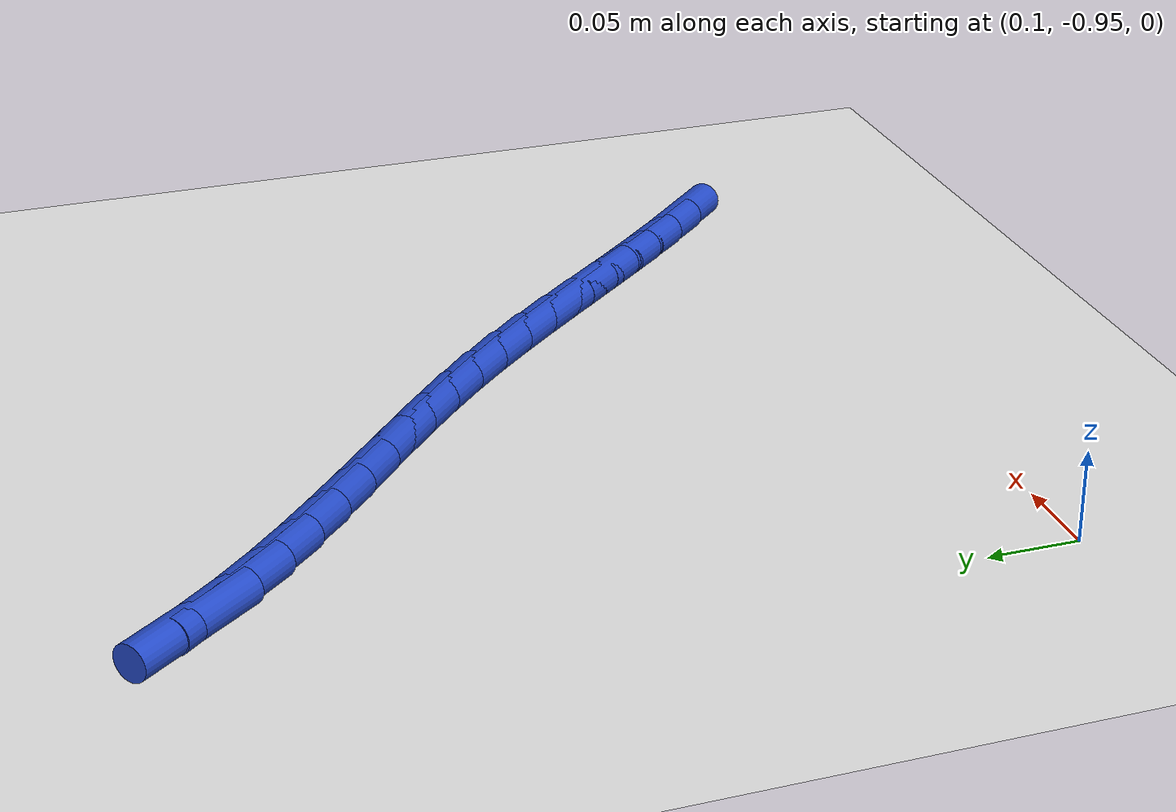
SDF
<sdf version="1.6">
 <world name="default">
  <model name="ground_plane">
   <static>1</static>
   <link name="link">
    <collision name="collision">
     <geometry><plane><normal>0 0 1</normal><size>100 100</size></plane></geometry>
     <surface><friction><ode><mu>100</mu><mu2>50</mu2></ode></friction></surface>
    </collision>
    <visual name="visual">
     <cast_shadows>0</cast_shadows>
     <geometry><plane><normal>0 0 1</normal><size>100 100</size></plane></geometry>
     <material>
      <script><uri>file://media/materials/scripts/gazebo.material</uri><name>Gazebo/WhiteGlow</name></script>
     </material>
    </visual>
   </link>
  </model>
  <model name="line">
   <link name="link_201">
    <pose>0.5169553583349302 -0.8939019984668377 0.01 0 1.57 -0.8051319162986683</pose>
    <collision name="collision">
     <geometry><cylinder><radius>0.01</radius><length>0.08</length></cylinder></geometry>
    </collision>
    <visual name="visual">
     <material>
      <script><name>Gazebo/Blue</name><uri>file://media/materials/scripts/gazebo.material</uri></script>
     </material>
     <geometry><cylinder><radius>0.01</radius><length>0.08</length></cylinder></geometry>
    </visual>
   </link>
   <link name="link_202">
    <pose>0.4979622378634895 -0.8741440751941504 0.01 0 1.57 -0.8291781540254539</pose>
    <collision name="collision">
     <geometry><cylinder><radius>0.01</radius><length>0.08</length></cylinder></geometry>
    </collision>
    <visual name="visual">
     <material>
      <script><name>Gazebo/Blue</name><uri>file://media/materials/scripts/gazebo.material</uri></script>
     </material>
     <geometry><cylinder><radius>0.01</radius><length>0.08</length></cylinder></geometry>
    </visual>
   </link>
   <link name="link_203">
    <pose>0.4794325066548951 -0.8539164629443785 0.01 0 1.57 -0.8460435262685444</pose>
    <collision name="collision">
     <geometry><cylinder><radius>0.01</radius><length>0.08</length></cylinder></geometry>
    </collision>
    <visual name="visual">
     <material>
      <script><name>Gazebo/Blue</name><uri>file://media/materials/scripts/gazebo.material</uri></script>
     </material>
     <geometry><cylinder><radius>0.01</radius><length>0.08</length></cylinder></geometry>
    </visual>
   </link>
   <link name="link_204">
    <pose>0.4612229466082112 -0.8333525868005263 0.01 0 1.57 -0.8557497998537005</pose>
    <collision name="collision">
     <geometry><cylinder><radius>0.01</radius><length>0.08</length></cylinder></geometry>
    </collision>
    <visual name="visual">
     <material>
      <script><name>Gazebo/Blue</name><uri>file://media/materials/scripts/gazebo.material</uri></script>
     </material>
     <geometry><cylinder><radius>0.01</radius><length>0.08</length></cylinder></geometry>
    </visual>
   </link>
   <link name="link_205">
    <pose>0.44319033962250165 -0.8125858718455982 0.01 0 1.57 -0.8583278559660719</pose>
    <collision name="collision">
     <geometry><cylinder><radius>0.01</radius><length>0.08</length></cylinder></geometry>
    </collision>
    <visual name="visual">
     <material>
      <script><name>Gazebo/Blue</name><uri>file://media/materials/scripts/gazebo.material</uri></script>
     </material>
     <geometry><cylinder><radius>0.01</radius><length>0.08</length></cylinder></geometry>
    </visual>
   </link>
   <link name="link_206">
    <pose>0.42519146759683035 -0.791749743162599 0.01 0 1.57 -0.8538028389555777</pose>
    <collision name="collision">
     <geometry><cylinder><radius>0.01</radius><length>0.08</length></cylinder></geometry>
    </collision>
    <visual name="visual">
     <material>
      <script><name>Gazebo/Blue</name><uri>file://media/materials/scripts/gazebo.material</uri></script>
     </material>
     <geometry><cylinder><radius>0.01</radius><length>0.08</length></cylinder></geometry>
    </visual>
   </link>
   <link name="link_207">
    <pose>0.40708311243026135 -0.7709776258345329 0.01 0 1.57 -0.8421903091302076</pose>
    <collision name="collision">
     <geometry><cylinder><radius>0.01</radius><length>0.08</length></cylinder></geometry>
    </collision>
    <visual name="visual">
     <material>
      <script><name>Gazebo/Blue</name><uri>file://media/materials/scripts/gazebo.material</uri></script>
     </material>
     <geometry><cylinder><radius>0.01</radius><length>0.08</length></cylinder></geometry>
    </visual>
   </link>
   <link name="link_208">
    <pose>0.3887220560218579 -0.750402944944404 0.01 0 1.57 -0.8235031281097872</pose>
    <collision name="collision">
     <geometry><cylinder><radius>0.01</radius><length>0.08</length></cylinder></geometry>
    </collision>
    <visual name="visual">
     <material>
      <script><name>Gazebo/Blue</name><uri>file://media/materials/scripts/gazebo.material</uri></script>
     </material>
     <geometry><cylinder><radius>0.01</radius><length>0.08</length></cylinder></geometry>
    </visual>
   </link>
   <link name="link_209">
    <pose>0.3699650802706852 -0.7301591255752178 0.01 0 1.57 -0.7977689098850479</pose>
    <collision name="collision">
     <geometry><cylinder><radius>0.01</radius><length>0.08</length></cylinder></geometry>
    </collision>
    <visual name="visual">
     <material>
      <script><name>Gazebo/Blue</name><uri>file://media/materials/scripts/gazebo.material</uri></script>
     </material>
     <geometry><cylinder><radius>0.01</radius><length>0.08</length></cylinder></geometry>
    </visual>
   </link>
   <link name="link_210">
    <pose>0.3506689670758065 -0.7103795928099783 0.01 0 1.57 -0.7666496143418662</pose>
    <collision name="collision">
     <geometry><cylinder><radius>0.01</radius><length>0.08</length></cylinder></geometry>
    </collision>
    <visual name="visual">
     <material>
      <script><name>Gazebo/Blue</name><uri>file://media/materials/scripts/gazebo.material</uri></script>
     </material>
     <geometry><cylinder><radius>0.01</radius><length>0.08</length></cylinder></geometry>
    </visual>
   </link>
   <link name="link_211">
    <pose>0.33072411848438776 -0.6911689391013905 0.01 0 1.57 -0.740522003229498</pose>
    <collision name="collision">
     <geometry><cylinder><radius>0.01</radius><length>0.08</length></cylinder></geometry>
    </collision>
    <visual name="visual">
     <material>
      <script><name>Gazebo/Blue</name><uri>file://media/materials/scripts/gazebo.material</uri></script>
     </material>
     <geometry><cylinder><radius>0.01</radius><length>0.08</length></cylinder></geometry>
    </visual>
   </link>
   <link name="link_212">
    <pose>0.3102390970359858 -0.672444662520423 0.01 0 1.57 -0.7234119943382181</pose>
    <collision name="collision">
     <geometry><cylinder><radius>0.01</radius><length>0.08</length></cylinder></geometry>
    </collision>
    <visual name="visual">
     <material>
      <script><name>Gazebo/Blue</name><uri>file://media/materials/scripts/gazebo.material</uri></script>
     </material>
     <geometry><cylinder><radius>0.01</radius><length>0.08</length></cylinder></geometry>
    </visual>
   </link>
   <link name="link_213">
    <pose>0.28940952744837883 -0.6540495966365639 0.01 0 1.57 -0.7152343035590384</pose>
    <collision name="collision">
     <geometry><cylinder><radius>0.01</radius><length>0.08</length></cylinder></geometry>
    </collision>
    <visual name="visual">
     <material>
      <script><name>Gazebo/Blue</name><uri>file://media/materials/scripts/gazebo.material</uri></script>
     </material>
     <geometry><cylinder><radius>0.01</radius><length>0.08</length></cylinder></geometry>
    </visual>
   </link>
   <link name="link_214">
    <pose>0.26843126139380874 -0.6358263803832124 0.01 0 1.57 -0.7159547083516045</pose>
    <collision name="collision">
     <geometry><cylinder><radius>0.01</radius><length>0.08</length></cylinder></geometry>
    </collision>
    <visual name="visual">
     <material>
      <script><name>Gazebo/Blue</name><uri>file://media/materials/scripts/gazebo.material</uri></script>
     </material>
     <geometry><cylinder><radius>0.01</radius><length>0.08</length></cylinder></geometry>
    </visual>
   </link>
   <link name="link_215">
    <pose>0.2475001505445166 -0.6176176526937674 0.01 0 1.57 -0.7256200462038217</pose>
    <collision name="collision">
     <geometry><cylinder><radius>0.01</radius><length>0.08</length></cylinder></geometry>
    </collision>
    <visual name="visual">
     <material>
      <script><name>Gazebo/Blue</name><uri>file://media/materials/scripts/gazebo.material</uri></script>
     </material>
     <geometry><cylinder><radius>0.01</radius><length>0.08</length></cylinder></geometry>
    </visual>
   </link>
   <link name="link_216">
    <pose>0.22681204657274515 -0.5992660525016292 0.01 0 1.57 -0.7443577926209228</pose>
    <collision name="collision">
     <geometry><cylinder><radius>0.01</radius><length>0.08</length></cylinder></geometry>
    </collision>
    <visual name="visual">
     <material>
      <script><name>Gazebo/Blue</name><uri>file://media/materials/scripts/gazebo.material</uri></script>
     </material>
     <geometry><cylinder><radius>0.01</radius><length>0.08</length></cylinder></geometry>
    </visual>
   </link>
   <link name="link_217">
    <pose>0.2065628011507356 -0.5806142187401967 0.01 0 1.57 -0.772355124607894</pose>
    <collision name="collision">
     <geometry><cylinder><radius>0.01</radius><length>0.08</length></cylinder></geometry>
    </collision>
    <visual name="visual">
     <material>
      <script><name>Gazebo/Blue</name><uri>file://media/materials/scripts/gazebo.material</uri></script>
     </material>
     <geometry><cylinder><radius>0.01</radius><length>0.08</length></cylinder></geometry>
    </visual>
   </link>
   <link name="link_218">
    <pose>0.18694826595072953 -0.5615047903428688 0.01 0 1.57 -0.8098142635884824</pose>
    <collision name="collision">
     <geometry><cylinder><radius>0.01</radius><length>0.08</length></cylinder></geometry>
    </collision>
    <visual name="visual">
     <material>
      <script><name>Gazebo/Blue</name><uri>file://media/materials/scripts/gazebo.material</uri></script>
     </material>
     <geometry><cylinder><radius>0.01</radius><length>0.08</length></cylinder></geometry>
    </visual>
   </link>
   <link name="link_219">
    <pose>0.1681642926449687 -0.5417804062430455 0.01 0 1.57 -0.8568797233278597</pose>
    <collision name="collision">
     <geometry><cylinder><radius>0.01</radius><length>0.08</length></cylinder></geometry>
    </collision>
    <visual name="visual">
     <material>
      <script><name>Gazebo/Blue</name><uri>file://media/materials/scripts/gazebo.material</uri></script>
     </material>
     <geometry><cylinder><radius>0.01</radius><length>0.08</length></cylinder></geometry>
    </visual>
   </link>
   <link name="link_220">
    <pose>0.15040673290569473 -0.5212837053741256 0.01 0 1.57 -0.9135349252478828</pose>
    <collision name="collision">
     <geometry><cylinder><radius>0.01</radius><length>0.08</length></cylinder></geometry>
    </collision>
    <visual name="visual">
     <material>
      <script><name>Gazebo/Blue</name><uri>file://media/materials/scripts/gazebo.material</uri></script>
     </material>
     <geometry><cylinder><radius>0.01</radius><length>0.08</length></cylinder></geometry>
    </visual>
   </link>
  </model>
 </world>
</sdf>
